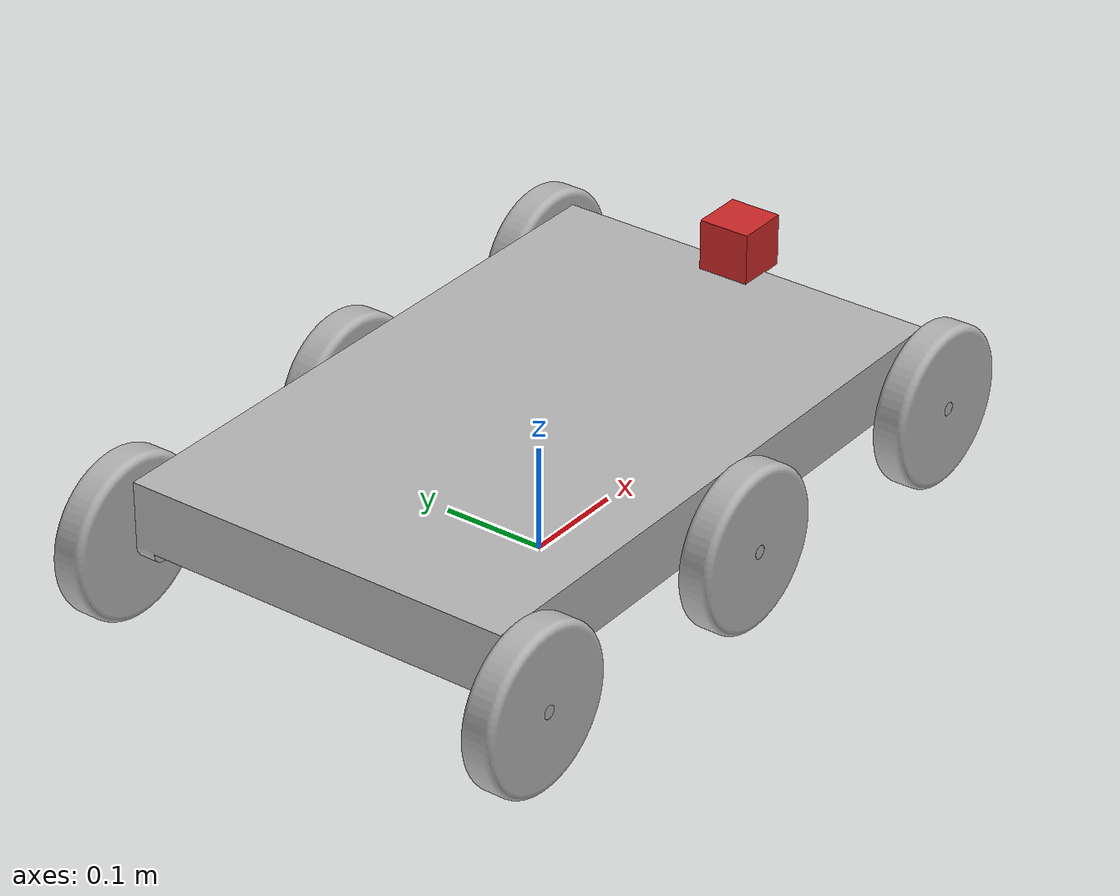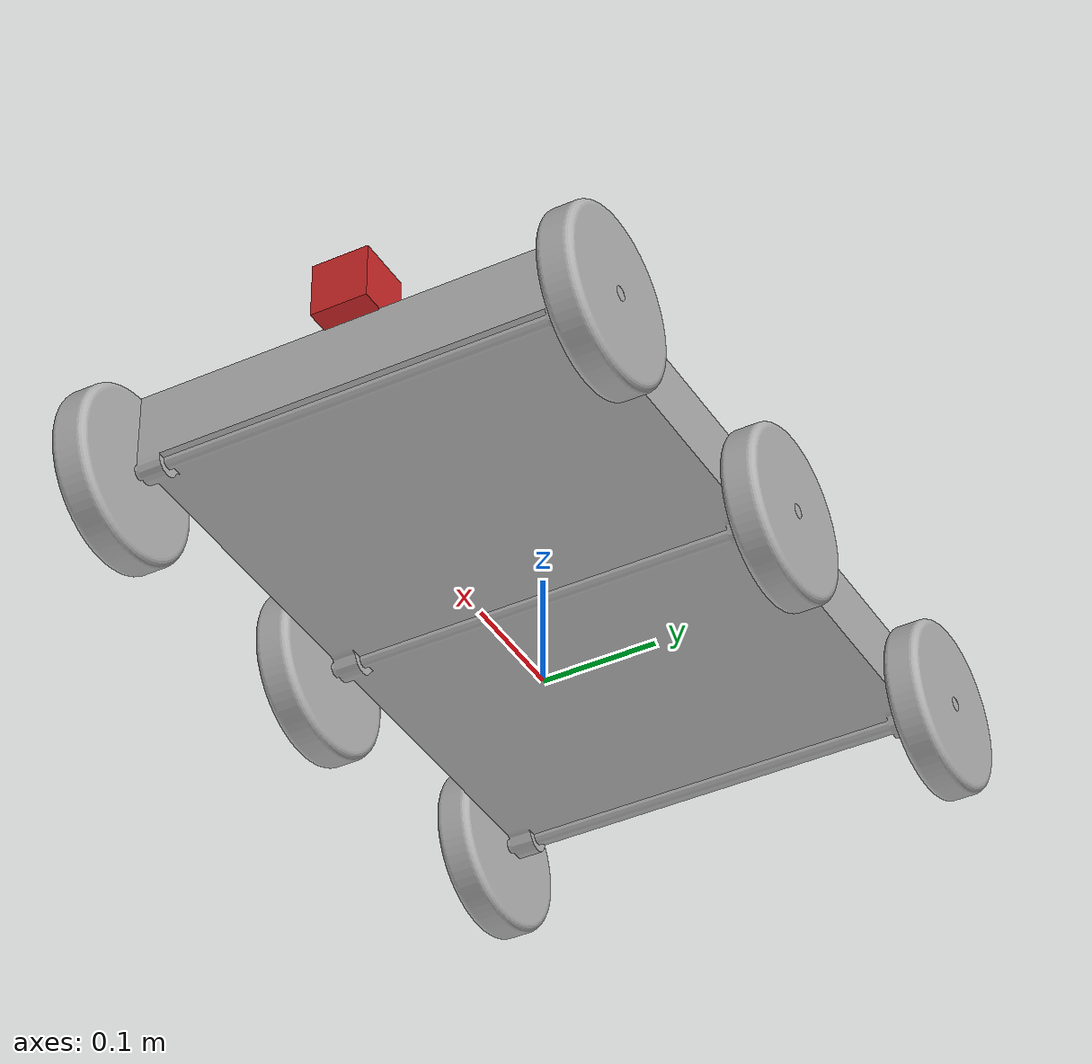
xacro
<?xml version="1.0" ?>
<robot name="six_wheeled_robot" xmlns:xacro="http://www.ros.org/wiki/xacro">

<xacro:include filename="$(find six_wheeled_robot)/urdf/materials.xacro" />
<xacro:include filename="$(find six_wheeled_robot)/urdf/six_wheeled_robot.trans" />
<xacro:include filename="$(find six_wheeled_robot)/urdf/six_wheeled_robot.gazebo" />
<link name="base_link">
  <inertial>
    <origin rpy="0 0 0" xyz="2.841280940385884e-16 -7.09531036496353e-05 0.1110419484576658"/>
    <mass value="2.642747554846689"/>
    <inertia ixx="0.042456" ixy="0.0" ixz="0.0" iyy="0.101894" iyz="-7e-06" izz="0.140146"/>
  </inertial>
  <visual>
    <origin rpy="0 0 0" xyz="0 0 0"/>
    <geometry>
      <mesh filename="package://six_wheeled_robot/meshes/base_link.stl" scale="0.001 0.001 0.001"/>
    </geometry>
    <material name="silver"/>
  </visual>
  <collision>
    <origin rpy="0 0 0" xyz="0 0 0"/>
    <geometry>
      <mesh filename="package://six_wheeled_robot/meshes/base_link.stl" scale="0.001 0.001 0.001"/>
    </geometry>
  </collision>
</link>

<link name="wheel1_1">
  <inertial>
    <origin rpy="0 0 0" xyz="3.008704396734174e-14 -0.015874999999999778 -5.551115123125783e-17"/>
    <mass value="0.19439237862872402"/>
    <inertia ixx="0.000362" ixy="0.0" ixz="-0.0" iyy="0.00066" iyz="0.0" izz="0.000362"/>
  </inertial>
  <visual>
    <origin rpy="0 0 0" xyz="-0.2921 -0.2286 -0.08255"/>
    <geometry>
      <mesh filename="package://six_wheeled_robot/meshes/wheel1_1.stl" scale="0.001 0.001 0.001"/>
    </geometry>
    <material name="silver"/>
  </visual>
  <collision>
    <origin rpy="0 0 0" xyz="-0.2921 -0.2286 -0.08255"/>
    <geometry>
      <mesh filename="package://six_wheeled_robot/meshes/wheel1_1.stl" scale="0.001 0.001 0.001"/>
    </geometry>
  </collision>
</link>

<link name="wheel2_1">
  <inertial>
    <origin rpy="0 0 0" xyz="3.0198066269804264e-14 -0.015874999999999834 1.6653345369377348e-16"/>
    <mass value="0.19439237862872388"/>
    <inertia ixx="0.000362" ixy="0.0" ixz="0.0" iyy="0.00066" iyz="-0.0" izz="0.000362"/>
  </inertial>
  <visual>
    <origin rpy="0 0 0" xyz="-0.0 -0.2286 -0.08255"/>
    <geometry>
      <mesh filename="package://six_wheeled_robot/meshes/wheel2_1.stl" scale="0.001 0.001 0.001"/>
    </geometry>
    <material name="silver"/>
  </visual>
  <collision>
    <origin rpy="0 0 0" xyz="-0.0 -0.2286 -0.08255"/>
    <geometry>
      <mesh filename="package://six_wheeled_robot/meshes/wheel2_1.stl" scale="0.001 0.001 0.001"/>
    </geometry>
  </collision>
</link>

<link name="wheel3_1">
  <inertial>
    <origin rpy="0 0 0" xyz="3.0142555118573e-14 -0.015875 6.938893903907228e-17"/>
    <mass value="0.19439237862872388"/>
    <inertia ixx="0.000362" ixy="-0.0" ixz="-0.0" iyy="0.00066" iyz="0.0" izz="0.000362"/>
  </inertial>
  <visual>
    <origin rpy="0 0 0" xyz="0.2921 -0.2286 -0.08255"/>
    <geometry>
      <mesh filename="package://six_wheeled_robot/meshes/wheel3_1.stl" scale="0.001 0.001 0.001"/>
    </geometry>
    <material name="silver"/>
  </visual>
  <collision>
    <origin rpy="0 0 0" xyz="0.2921 -0.2286 -0.08255"/>
    <geometry>
      <mesh filename="package://six_wheeled_robot/meshes/wheel3_1.stl" scale="0.001 0.001 0.001"/>
    </geometry>
  </collision>
</link>

<link name="wheel4_1">
  <inertial>
    <origin rpy="0 0 0" xyz="3.019806626980426e-14 0.015875000000000056 -1.3877787807814457e-17"/>
    <mass value="0.19439237862872402"/>
    <inertia ixx="0.000362" ixy="-0.0" ixz="-0.0" iyy="0.00066" iyz="0.0" izz="0.000362"/>
  </inertial>
  <visual>
    <origin rpy="0 0 0" xyz="-0.2921 0.2286 -0.08255"/>
    <geometry>
      <mesh filename="package://six_wheeled_robot/meshes/wheel4_1.stl" scale="0.001 0.001 0.001"/>
    </geometry>
    <material name="silver"/>
  </visual>
  <collision>
    <origin rpy="0 0 0" xyz="-0.2921 0.2286 -0.08255"/>
    <geometry>
      <mesh filename="package://six_wheeled_robot/meshes/wheel4_1.stl" scale="0.001 0.001 0.001"/>
    </geometry>
  </collision>
</link>

<link name="wheel5_1">
  <inertial>
    <origin rpy="0 0 0" xyz="3.019806626980426e-14 0.015874999999999945 9.71445146547012e-17"/>
    <mass value="0.19439237862872408"/>
    <inertia ixx="0.000362" ixy="0.0" ixz="0.0" iyy="0.00066" iyz="0.0" izz="0.000362"/>
  </inertial>
  <visual>
    <origin rpy="0 0 0" xyz="-0.0 0.2286 -0.08255"/>
    <geometry>
      <mesh filename="package://six_wheeled_robot/meshes/wheel5_1.stl" scale="0.001 0.001 0.001"/>
    </geometry>
    <material name="silver"/>
  </visual>
  <collision>
    <origin rpy="0 0 0" xyz="-0.0 0.2286 -0.08255"/>
    <geometry>
      <mesh filename="package://six_wheeled_robot/meshes/wheel5_1.stl" scale="0.001 0.001 0.001"/>
    </geometry>
  </collision>
</link>

<link name="wheel6_1">
  <inertial>
    <origin rpy="0 0 0" xyz="3.008704396734174e-14 0.015874999999999778 6.938893903907228e-17"/>
    <mass value="0.19439237862872388"/>
    <inertia ixx="0.000362" ixy="0.0" ixz="-0.0" iyy="0.00066" iyz="-0.0" izz="0.000362"/>
  </inertial>
  <visual>
    <origin rpy="0 0 0" xyz="0.2921 0.2286 -0.08255"/>
    <geometry>
      <mesh filename="package://six_wheeled_robot/meshes/wheel6_1.stl" scale="0.001 0.001 0.001"/>
    </geometry>
    <material name="silver"/>
  </visual>
  <collision>
    <origin rpy="0 0 0" xyz="0.2921 0.2286 -0.08255"/>
    <geometry>
      <mesh filename="package://six_wheeled_robot/meshes/wheel6_1.stl" scale="0.001 0.001 0.001"/>
    </geometry>
  </collision>
</link>

<joint name="Rev4" type="continuous">
  <origin rpy="0 0 0" xyz="0.2921 0.2286 0.08255"/>
  <parent link="base_link"/>
  <child link="wheel1_1"/>
  <axis xyz="0.0 1.0 0.0"/>
</joint>

<joint name="Rev5" type="continuous">
  <origin rpy="0 0 0" xyz="0.0 0.2286 0.08255"/>
  <parent link="base_link"/>
  <child link="wheel2_1"/>
  <axis xyz="0.0 1.0 0.0"/>
</joint>

<joint name="Rev6" type="continuous">
  <origin rpy="0 0 0" xyz="-0.2921 0.2286 0.08255"/>
  <parent link="base_link"/>
  <child link="wheel3_1"/>
  <axis xyz="0.0 1.0 0.0"/>
</joint>

<joint name="Rev7" type="continuous">
  <origin rpy="0 0 0" xyz="0.2921 -0.2286 0.08255"/>
  <parent link="base_link"/>
  <child link="wheel4_1"/>
  <axis xyz="0.0 1.0 0.0"/>
</joint>

<joint name="Rev8" type="continuous">
  <origin rpy="0 0 0" xyz="0.0 -0.2286 0.08255"/>
  <parent link="base_link"/>
  <child link="wheel5_1"/>
  <axis xyz="0.0 1.0 0.0"/>
</joint>

<joint name="Rev9" type="continuous">
  <origin rpy="0 0 0" xyz="-0.2921 -0.2286 0.08255"/>
  <parent link="base_link"/>
  <child link="wheel6_1"/>
  <axis xyz="0.0 1.0 0.0"/>
</joint>

<joint name="camera_joint" type="fixed">
    <axis xyz="0 1 0" />
    <origin xyz="0.3 0 0.78" rpy="0 0 0"/>
    <parent link="base_link"/>
    <child link="camera_link"/>
  </joint>

<link name="camera_link">
  <inertial>
    <origin rpy="0 0 0" xyz="-2.382091620719423e-05 4.2805859703891336e-07 -0.0047619771893046"/>
    <mass value="0.6765868682880053"/>
    <inertia ixx="0.031477" ixy="0.000557" ixz="1e-06" iyy="0.000186" iyz="-4e-06" izz="0.031608"/>
  </inertial>
  <visual>
    <origin rpy="0 0 0" xyz="0.0 0.002265 -0.61"/>
    <geometry>
      <box size="0.05 0.05 0.05"/>
    </geometry>
    <material name="red"/>
  </visual>
  <collision>
    <origin rpy="0 0 0" xyz="0.057171 0.002265 -0.428419"/>
    <geometry>
    </geometry>
  </collision>
</link>

</robot>

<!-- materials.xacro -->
<robot name="six_wheeled_robot" xmlns:xacro="http://www.ros.org/wiki/xacro" >

<material name="silver">
  <color rgba="0.700 0.700 0.700 1.000"/>
</material>

</robot>

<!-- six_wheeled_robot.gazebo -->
<robot name="six_wheeled_robot" xmlns:xacro="http://www.ros.org/wiki/xacro" >

<xacro:property name="body_color" value="Gazebo/Silver" />
<xacro:property name="black_color" value="Gazebo/FlatBlack" />
<xacro:property name="body_friction" value="0.01" />
<xacro:property name="wheel_friction" value="2.5" />
<xacro:property name="caster_friction" value="0.5" />

<gazebo>
  <plugin filename="libgazebo_ros_control.so" name="control"/>
</gazebo>
<gazebo reference="base_link">
  <material>${body_color}</material>
  <mu1>${body_friction}</mu1>
  <mu2>${body_friction}</mu2>
  <selfCollide>true</selfCollide>
  <gravity>true</gravity>
</gazebo>

<gazebo reference="wheel1_1">
  <material>${black_color}</material>
  <mu1>${caster_friction}</mu1>
  <mu2>${caster_friction}</mu2>
  <selfCollide>true</selfCollide>
</gazebo>

<gazebo reference="wheel2_1">
  <material>${black_color}</material>
  <mu1>${wheel_friction}</mu1>
  <mu2>${wheel_friction}</mu2>
  <selfCollide>true</selfCollide>
</gazebo>

<gazebo reference="wheel3_1">
  <material>${black_color}</material>
  <mu1>${caster_friction}</mu1>
  <mu2>${caster_friction}</mu2>
  <selfCollide>true</selfCollide>
</gazebo>

<gazebo reference="wheel4_1">
  <material>${black_color}</material>
  <mu1>${caster_friction}</mu1>
  <mu2>${caster_friction}</mu2>
  <selfCollide>true</selfCollide>
</gazebo>

<gazebo reference="wheel5_1">
  <material>${black_color}</material>
  <mu1>${wheel_friction}</mu1>
  <mu2>${wheel_friction}</mu2>
  <selfCollide>true</selfCollide>
</gazebo>

<gazebo reference="wheel6_1">
  <material>${black_color}</material>
  <mu1>${caster_friction}</mu1>
  <mu2>${caster_friction}</mu2>
  <selfCollide>true</selfCollide>
</gazebo>

<gazebo>
  <plugin name="differential_drive_controller" filename="libgazebo_ros_diff_drive.so">

    <!-- Plugin update rate in Hz -->
    <updateRate>60</updateRate>

    <!-- Name of left joint, defaults to `left_joint` -->
    <leftJoint>Rev4</leftJoint>

    <!-- Name of right joint, defaults to `right_joint` -->
    <rightJoint>Rev7</rightJoint>

    <!-- The distance from the center of one wheel to the other, in meters, defaults to 0.34 m -->
    <wheelSeparation>0.4064</wheelSeparation>

    <!-- Diameter of the wheels, in meters, defaults to 0.15 m -->
    <wheelDiameter>0.152</wheelDiameter>

    <!-- Wheel acceleration, in rad/s^2, defaults to 0.0 rad/s^2 -->
    <wheelAcceleration>6.28</wheelAcceleration>

    <!-- Maximum torque which the wheels can produce, in Nm, defaults to 5 Nm -->
    <wheelTorque>20</wheelTorque>

    <!-- Topic to receive geometry_msgs/Twist message commands, defaults to `cmd_vel` -->
    <commandTopic>cmd_vel</commandTopic>

    <!-- Topic to publish nav_msgs/Odometry messages, defaults to `odom` -->
    <odometryTopic>odom</odometryTopic>

    <!-- Odometry frame, defaults to `odom` -->
    <odometryFrame>odom</odometryFrame>

    <!-- Robot frame to calculate odometry from, defaults to `base_footprint` -->
    <robotBaseFrame>base_link</robotBaseFrame>

    <!-- Odometry source, 0 for ENCODER, 1 for WORLD, defaults to WORLD -->
    <odometrySource>1</odometrySource>

    <!-- Set to true to publish transforms for the wheel links, defaults to false -->
    <publishWheelTF>true</publishWheelTF>

    <!-- Set to true to publish transforms for the odometry, defaults to true -->
    <publishOdom>true</publishOdom>

    <!-- Set to true to publish sensor_msgs/JointState on /joint_states for the wheel joints, defaults to false -->
    <publishWheelJointState>true</publishWheelJointState>

    <!-- Set to true to swap right and left wheels, defaults to true -->
    <legacyMode>false</legacyMode>
  </plugin>
</gazebo>

<gazebo>
  <plugin name="differential_drive_controller" filename="libgazebo_ros_diff_drive.so">

    <!-- Plugin update rate in Hz -->
    <updateRate>60</updateRate>

    <!-- Name of left joint, defaults to `left_joint` -->
    <leftJoint>Rev6</leftJoint>

    <!-- Name of right joint, defaults to `right_joint` -->
    <rightJoint>Rev9</rightJoint>

    <!-- The distance from the center of one wheel to the other, in meters, defaults to 0.34 m -->
    <wheelSeparation>0.4064</wheelSeparation>

    <!-- Diameter of the wheels, in meters, defaults to 0.15 m -->
    <wheelDiameter>0.152</wheelDiameter>

    <!-- Wheel acceleration, in rad/s^2, defaults to 0.0 rad/s^2 -->
    <wheelAcceleration>6.28</wheelAcceleration>

    <!-- Maximum torque which the wheels can produce, in Nm, defaults to 5 Nm -->
    <wheelTorque>20</wheelTorque>

    <!-- Topic to receive geometry_msgs/Twist message commands, defaults to `cmd_vel` -->
    <commandTopic>cmd_vel</commandTopic>

    <!-- Topic to publish nav_msgs/Odometry messages, defaults to `odom` -->
    <odometryTopic>odom</odometryTopic>

    <!-- Odometry frame, defaults to `odom` -->
    <odometryFrame>odom</odometryFrame>

    <!-- Robot frame to calculate odometry from, defaults to `base_footprint` -->
    <robotBaseFrame>base_link</robotBaseFrame>

    <!-- Odometry source, 0 for ENCODER, 1 for WORLD, defaults to WORLD -->
    <odometrySource>1</odometrySource>

    <!-- Set to true to publish transforms for the wheel links, defaults to false -->
    <publishWheelTF>true</publishWheelTF>

    <!-- Set to true to publish transforms for the odometry, defaults to true -->
    <publishOdom>true</publishOdom>

    <!-- Set to true to publish sensor_msgs/JointState on /joint_states for the wheel joints, defaults to false -->
    <publishWheelJointState>true</publishWheelJointState>

    <!-- Set to true to swap right and left wheels, defaults to true -->
    <legacyMode>false</legacyMode>
  </plugin>
</gazebo>

<gazebo>
  <plugin name="differential_drive_controller" filename="libgazebo_ros_diff_drive.so">

    <!-- Plugin update rate in Hz -->
    <updateRate>60</updateRate>

    <!-- Name of left joint, defaults to `left_joint` -->
    <leftJoint>Rev5</leftJoint>

    <!-- Name of right joint, defaults to `right_joint` -->
    <rightJoint>Rev8</rightJoint>

    <!-- The distance from the center of one wheel to the other, in meters, defaults to 0.34 m -->
    <wheelSeparation>0.4064</wheelSeparation>

    <!-- Diameter of the wheels, in meters, defaults to 0.15 m -->
    <wheelDiameter>0.152</wheelDiameter>

    <!-- Wheel acceleration, in rad/s^2, defaults to 0.0 rad/s^2 -->
    <wheelAcceleration>6.28</wheelAcceleration>

    <!-- Maximum torque which the wheels can produce, in Nm, defaults to 5 Nm -->
    <wheelTorque>20</wheelTorque>

    <!-- Topic to receive geometry_msgs/Twist message commands, defaults to `cmd_vel` -->
    <commandTopic>cmd_vel</commandTopic>

    <!-- Topic to publish nav_msgs/Odometry messages, defaults to `odom` -->
    <odometryTopic>odom</odometryTopic>

    <!-- Odometry frame, defaults to `odom` -->
    <odometryFrame>odom</odometryFrame>

    <!-- Robot frame to calculate odometry from, defaults to `base_footprint` -->
    <robotBaseFrame>base_link</robotBaseFrame>

    <!-- Odometry source, 0 for ENCODER, 1 for WORLD, defaults to WORLD -->
    <odometrySource>1</odometrySource>

    <!-- Set to true to publish transforms for the wheel links, defaults to false -->
    <publishWheelTF>true</publishWheelTF>

    <!-- Set to true to publish transforms for the odometry, defaults to true -->
    <publishOdom>true</publishOdom>

    <!-- Set to true to publish sensor_msgs/JointState on /joint_states for the wheel joints, defaults to false -->
    <publishWheelJointState>true</publishWheelJointState>

    <!-- Set to true to swap right and left wheels, defaults to true -->
    <legacyMode>false</legacyMode>
  </plugin>
</gazebo>

  <gazebo reference="camera_link">
    <sensor type="camera" name="camera1">
      <update_rate>30.0</update_rate>
      <camera name="head">
        <horizontal_fov>1.3962634</horizontal_fov>
        <image>
          <width>800</width>
          <height>800</height>
          <format>R8G8B8</format>
        </image>
        <clip>
          <near>0.02</near>
          <far>300</far>
        </clip>
        <noise>
          <type>gaussian</type>
          <!-- Noise is sampled independently per pixel on each frame.
               That pixel's noise value is added to each of its color
               channels, which at that point lie in the range [0,1]. -->
          <mean>0.0</mean>
          <stddev>0.007</stddev>
        </noise>
      </camera>
      <plugin name="camera_controller" filename="libgazebo_ros_camera.so">
        <alwaysOn>true</alwaysOn>
        <updateRate>0.0</updateRate>
        <cameraName>rrbot/camera1</cameraName>
        <imageTopicName>image_raw</imageTopicName>
        <cameraInfoTopicName>camera_info</cameraInfoTopicName>
        <frameName>camera_link</frameName>
        <hackBaseline>0.07</hackBaseline>
        <distortionK1>0.0</distortionK1>
        <distortionK2>0.0</distortionK2>
        <distortionK3>0.0</distortionK3>
        <distortionT1>0.0</distortionT1>
        <distortionT2>0.0</distortionT2>
      </plugin>
    </sensor>
  </gazebo>

</robot>
